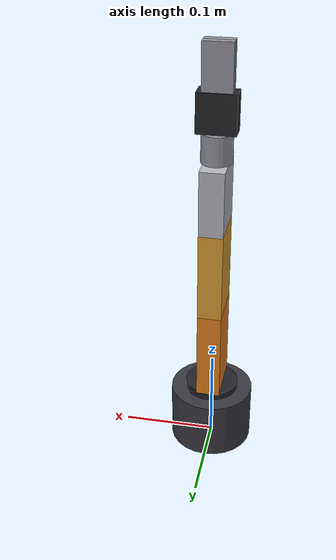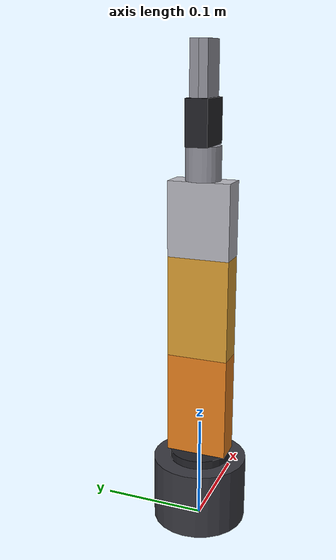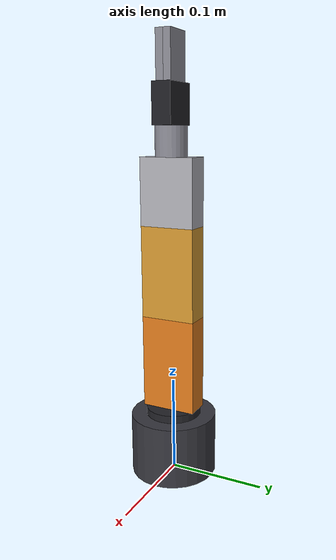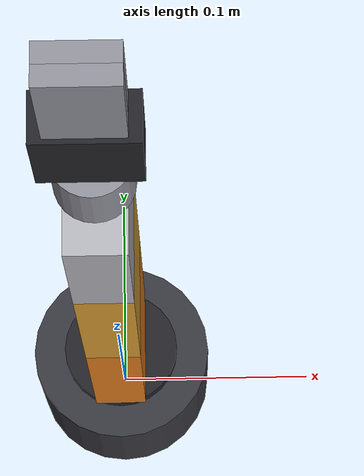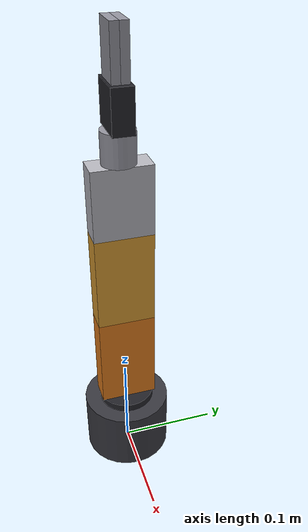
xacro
<?xml version="1.0"?>
<robot xmlns:xacro="http://www.ros.org/wiki/xacro" name="my_robot_arm">

  <!-- ================= 实测尺寸参数 ================= -->
  <xacro:property name="base_height" value="0.0645"/>  <!-- 底面 -> j1 轴线 -->
  <xacro:property name="j1_j2"       value="0.008"/>   <!-- j1 轴线 -> j2 轴线 -->
  <xacro:property name="link2_len"   value="0.0985"/>  <!-- j2 -> j3，大臂 -->
  <xacro:property name="link3_len"   value="0.0950"/>  <!-- j3 -> j4，小臂 -->
  <xacro:property name="link4_len"   value="0.0685"/>  <!-- j4 -> j5，腕部 -->
  <xacro:property name="j5_j6"       value="0.0300"/>  <!-- j5 -> j6，舵机连接节点 -->
  <xacro:property name="gripper_top" value="0.1170"/>  <!-- j5 -> 夹爪完全闭合时的最高点 -->

  <!-- ============ 关节截面尺寸（实测） ============ -->
  <!-- X = 侧视方向的进深（臂弯曲平面内）；Y = 沿各俯仰关节旋转轴的宽度 -->
  <xacro:property name="joint_depth" value="0.0252"/>  <!-- 侧视方向 25.2mm -->
  <xacro:property name="joint_width" value="0.0576"/>  <!-- Y 方向 57.6mm，关节平均宽度 -->

  <!-- ============ 占位尺寸（用户未提供，按小型桌面臂估算，可直接改这里） ============ -->
  <xacro:property name="base_radius"     value="0.045"/>   <!-- 底座半径 -->
  <xacro:property name="j1_block_radius" value="0.0288"/>  <!-- j1->j2 转接块半径 = 关节宽度/2 -->
  <xacro:property name="connector_r"     value="0.016"/>   <!-- j5->j6 连接段半径 -->
  <xacro:property name="servo_len"       value="0.040"/>   <!-- 夹爪舵机本体高度 -->
  <xacro:property name="servo_w"         value="0.040"/>   <!-- 舵机宽(x) -->
  <xacro:property name="servo_d"         value="0.020"/>   <!-- 舵机厚(y) -->
  <xacro:property name="finger_w"        value="0.030"/>   <!-- 手指宽(x) -->
  <xacro:property name="finger_t"        value="0.008"/>   <!-- 手指厚(y) -->
  <xacro:property name="finger_close_y"  value="0.004"/>   <!-- 闭合时手指中心 |y| -->
  <xacro:property name="finger_travel"   value="0.020"/>   <!-- 单指最大行程（开口共 40mm） -->

  <!-- 夹爪手指长度由「最高点」反推：j5->j6 + 舵机 + 手指 = 117mm -->
  <xacro:property name="finger_len" value="${gripper_top - j5_j6 - servo_len}"/>

  <!-- ================= 质量参数（占位，单位 kg） ================= -->
  <xacro:property name="m_base"    value="0.60"/>
  <xacro:property name="m_link1"   value="0.05"/>
  <xacro:property name="m_link2"   value="0.16"/>
  <xacro:property name="m_link3"   value="0.13"/>
  <xacro:property name="m_link4"   value="0.08"/>
  <xacro:property name="m_link5"   value="0.04"/>
  <xacro:property name="m_servo"   value="0.06"/>
  <xacro:property name="m_finger"  value="0.01"/>

  <!-- ================= 关节参数 ================= -->
  <xacro:property name="effort"   value="10.0"/>
  <xacro:property name="velocity" value="3.0"/>

  <!-- ================= 颜色 ================= -->
  <material name="graphite"> <color rgba="0.22 0.22 0.25 1.0"/></material>
  <material name="orange">   <color rgba="0.90 0.50 0.12 1.0"/></material>
  <material name="amber">    <color rgba="0.86 0.62 0.20 1.0"/></material>
  <material name="silver">   <color rgba="0.72 0.72 0.75 1.0"/></material>
  <material name="dark">     <color rgba="0.14 0.14 0.16 1.0"/></material>
  <material name="steel">    <color rgba="0.58 0.58 0.62 1.0"/></material>

  <!-- ================= 惯量宏 ================= -->
  <xacro:macro name="box_inertial" params="mass x y z zoff">
    <inertial>
      <origin xyz="0 0 ${zoff}" rpy="0 0 0"/>
      <mass value="${mass}"/>
      <inertia ixx="${mass*(y*y+z*z)/12.0}" ixy="0.0" ixz="0.0"
               iyy="${mass*(x*x+z*z)/12.0}" iyz="0.0"
               izz="${mass*(x*x+y*y)/12.0}"/>
    </inertial>
  </xacro:macro>

  <xacro:macro name="cylinder_inertial" params="mass r h zoff">
    <inertial>
      <origin xyz="0 0 ${zoff}" rpy="0 0 0"/>
      <mass value="${mass}"/>
      <inertia ixx="${mass*(3.0*r*r+h*h)/12.0}" ixy="0.0" ixz="0.0"
               iyy="${mass*(3.0*r*r+h*h)/12.0}" iyz="0.0"
               izz="${mass*r*r/2.0}"/>
    </inertial>
  </xacro:macro>

  <link name="base_footprint"/>
  <joint name="base_footprint_joint" type="fixed">
    <parent link="base_footprint"/>
    <child link="base_link"/>
    <origin xyz="0 0 0" rpy="0 0 0"/>
  </joint>

  <!-- ================================================================
       base_link —— 底座，原点在地面，向上 64.5mm 到 j1
       ================================================================ -->
  <link name="base_link">
    <visual>
      <origin xyz="0 0 ${base_height/2}" rpy="0 0 0"/>
      <geometry><cylinder radius="${base_radius}" length="${base_height}"/></geometry>
      <material name="graphite"/>
    </visual>
    <collision>
      <origin xyz="0 0 ${base_height/2}" rpy="0 0 0"/>
      <geometry><cylinder radius="${base_radius}" length="${base_height}"/></geometry>
    </collision>
    <xacro:cylinder_inertial mass="${m_base}" r="${base_radius}" h="${base_height}" zoff="${base_height/2}"/>
  </link>

  <!-- j1：底座回转（绕竖直 Z 轴） -->
  <joint name="joint1" type="revolute">
    <parent link="base_link"/>
    <child link="link1"/>
    <origin xyz="0 0 ${base_height}" rpy="0 0 0"/>
    <axis xyz="0 0 1"/>
    <!-- 底盘总行程 180°，左右对称：-90° ~ +90° -->
    <limit lower="-1.57079633" upper="1.57079633" effort="${effort}" velocity="${velocity}"/>
    <dynamics damping="0.05" friction="0.02"/>
  </joint>

  <!-- ================================================================
       link1 —— j1 到 j2 的转接块，8mm
       ================================================================ -->
  <link name="link1">
    <visual>
      <origin xyz="0 0 ${j1_j2/2}" rpy="0 0 0"/>
      <geometry><cylinder radius="${j1_block_radius}" length="${j1_j2}"/></geometry>
      <material name="dark"/>
    </visual>
    <collision>
      <origin xyz="0 0 ${j1_j2/2}" rpy="0 0 0"/>
      <geometry><cylinder radius="${j1_block_radius}" length="${j1_j2}"/></geometry>
    </collision>
    <xacro:cylinder_inertial mass="${m_link1}" r="${j1_block_radius}" h="${j1_j2}" zoff="${j1_j2/2}"/>
  </link>

  <!-- j2：肩部俯仰（绕水平 Y 轴） -->
  <joint name="joint2" type="revolute">
    <parent link="link1"/>
    <child link="link2"/>
    <origin xyz="0 0 ${j1_j2}" rpy="0 0 0"/>
    <axis xyz="0 1 0"/>
    <limit lower="-1.57079633" upper="1.57079633" effort="${effort}" velocity="${velocity}"/>
    <dynamics damping="0.05" friction="0.02"/>
  </joint>

  <!-- ================================================================
       link2 —— 大臂，98.5mm
       ================================================================ -->
  <link name="link2">
    <visual>
      <origin xyz="0 0 ${link2_len/2}" rpy="0 0 0"/>
      <geometry><box size="${joint_depth} ${joint_width} ${link2_len}"/></geometry>
      <material name="orange"/>
    </visual>
    <collision>
      <origin xyz="0 0 ${link2_len/2}" rpy="0 0 0"/>
      <geometry><box size="${joint_depth} ${joint_width} ${link2_len}"/></geometry>
    </collision>
    <xacro:box_inertial mass="${m_link2}" x="${joint_depth}" y="${joint_width}" z="${link2_len}" zoff="${link2_len/2}"/>
  </link>

  <!-- j3：肘部俯仰 -->
  <joint name="joint3" type="revolute">
    <parent link="link2"/>
    <child link="link3"/>
    <origin xyz="0 0 ${link2_len}" rpy="0 0 0"/>
    <axis xyz="0 1 0"/>
    <!-- 与 j2 行程相同：-90° ~ +90° -->
    <limit lower="-1.57079633" upper="1.57079633" effort="${effort}" velocity="${velocity}"/>
    <dynamics damping="0.05" friction="0.02"/>
  </joint>

  <!-- ================================================================
       link3 —— 小臂，95mm
       ================================================================ -->
  <link name="link3">
    <visual>
      <origin xyz="0 0 ${link3_len/2}" rpy="0 0 0"/>
      <geometry><box size="${joint_depth} ${joint_width} ${link3_len}"/></geometry>
      <material name="amber"/>
    </visual>
    <collision>
      <origin xyz="0 0 ${link3_len/2}" rpy="0 0 0"/>
      <geometry><box size="${joint_depth} ${joint_width} ${link3_len}"/></geometry>
    </collision>
    <xacro:box_inertial mass="${m_link3}" x="${joint_depth}" y="${joint_width}" z="${link3_len}" zoff="${link3_len/2}"/>
  </link>

  <!-- j4：腕部俯仰 -->
  <joint name="joint4" type="revolute">
    <parent link="link3"/>
    <child link="link4"/>
    <origin xyz="0 0 ${link3_len}" rpy="0 0 0"/>
    <axis xyz="0 1 0"/>
    <limit lower="-1.57079633" upper="1.57079633" effort="${effort}" velocity="${velocity}"/>
    <dynamics damping="0.05" friction="0.02"/>
  </joint>

  <!-- ================================================================
       link4 —— 腕部，68.5mm，末端为 j5
       ================================================================ -->
  <link name="link4">
    <visual>
      <origin xyz="0 0 ${link4_len/2}" rpy="0 0 0"/>
      <geometry><box size="${joint_depth} ${joint_width} ${link4_len}"/></geometry>
      <material name="silver"/>
    </visual>
    <collision>
      <origin xyz="0 0 ${link4_len/2}" rpy="0 0 0"/>
      <geometry><box size="${joint_depth} ${joint_width} ${link4_len}"/></geometry>
    </collision>
    <xacro:box_inertial mass="${m_link4}" x="${joint_depth}" y="${joint_width}" z="${link4_len}" zoff="${link4_len/2}"/>
  </link>

  <!-- j5：腕部自转（沿臂轴 Z） -->
  <joint name="joint5" type="revolute">
    <parent link="link4"/>
    <child link="link5"/>
    <origin xyz="0 0 ${link4_len}" rpy="0 0 0"/>
    <axis xyz="0 0 1"/>
    <limit lower="-3.14159265" upper="3.14159265" effort="${effort}" velocity="${velocity}"/>
    <dynamics damping="0.05" friction="0.02"/>
  </joint>

  <!-- ================================================================
       link5 —— j5 到 j6 的舵机连接段，30mm
       ================================================================ -->
  <link name="link5">
    <visual>
      <origin xyz="0 0 ${j5_j6/2}" rpy="0 0 0"/>
      <geometry><cylinder radius="${connector_r}" length="${j5_j6}"/></geometry>
      <material name="steel"/>
    </visual>
    <collision>
      <origin xyz="0 0 ${j5_j6/2}" rpy="0 0 0"/>
      <geometry><cylinder radius="${connector_r}" length="${j5_j6}"/></geometry>
    </collision>
    <xacro:cylinder_inertial mass="${m_link5}" r="${connector_r}" h="${j5_j6}" zoff="${j5_j6/2}"/>
  </link>

  <!-- j6：夹爪舵机安装节点（结构固定节点，不产生自由度） -->
  <joint name="joint6" type="fixed">
    <parent link="link5"/>
    <child link="gripper_base"/>
    <origin xyz="0 0 ${j5_j6}" rpy="0 0 0"/>
  </joint>

  <!-- ================================================================
       gripper_base —— 夹爪舵机本体，40mm
       ================================================================ -->
  <link name="gripper_base">
    <visual>
      <origin xyz="0 0 ${servo_len/2}" rpy="0 0 0"/>
      <geometry><box size="${servo_w} ${servo_d} ${servo_len}"/></geometry>
      <material name="dark"/>
    </visual>
    <collision>
      <origin xyz="0 0 ${servo_len/2}" rpy="0 0 0"/>
      <geometry><box size="${servo_w} ${servo_d} ${servo_len}"/></geometry>
    </collision>
    <xacro:box_inertial mass="${m_servo}" x="${servo_w}" y="${servo_d}" z="${servo_len}" zoff="${servo_len/2}"/>
  </link>

  <!-- 左指：沿 +Y 张开，行程 0 ~ 20mm -->
  <joint name="gripper_finger_left_joint" type="prismatic">
    <parent link="gripper_base"/>
    <child link="gripper_finger_left"/>
    <origin xyz="0 ${finger_close_y} ${servo_len}" rpy="0 0 0"/>
    <axis xyz="0 1 0"/>
    <limit lower="0.0" upper="${finger_travel}" effort="20.0" velocity="0.05"/>
    <dynamics damping="0.02" friction="0.01"/>
  </joint>

  <link name="gripper_finger_left">
    <visual>
      <origin xyz="0 0 ${finger_len/2}" rpy="0 0 0"/>
      <geometry><box size="${finger_w} ${finger_t} ${finger_len}"/></geometry>
      <material name="steel"/>
    </visual>
    <collision>
      <origin xyz="0 0 ${finger_len/2}" rpy="0 0 0"/>
      <geometry><box size="${finger_w} ${finger_t} ${finger_len}"/></geometry>
    </collision>
    <xacro:box_inertial mass="${m_finger}" x="${finger_w}" y="${finger_t}" z="${finger_len}" zoff="${finger_len/2}"/>
  </link>

  <!-- 右指：轴向取 -Y，mimic 左指，实现对称开合 -->
  <joint name="gripper_finger_right_joint" type="prismatic">
    <parent link="gripper_base"/>
    <child link="gripper_finger_right"/>
    <origin xyz="0 ${-finger_close_y} ${servo_len}" rpy="0 0 0"/>
    <axis xyz="0 -1 0"/>
    <limit lower="0.0" upper="${finger_travel}" effort="20.0" velocity="0.05"/>
    <dynamics damping="0.02" friction="0.01"/>
    <mimic joint="gripper_finger_left_joint" multiplier="1.0" offset="0.0"/>
  </joint>

  <link name="gripper_finger_right">
    <visual>
      <origin xyz="0 0 ${finger_len/2}" rpy="0 0 0"/>
      <geometry><box size="${finger_w} ${finger_t} ${finger_len}"/></geometry>
      <material name="steel"/>
    </visual>
    <collision>
      <origin xyz="0 0 ${finger_len/2}" rpy="0 0 0"/>
      <geometry><box size="${finger_w} ${finger_t} ${finger_len}"/></geometry>
    </collision>
    <xacro:box_inertial mass="${m_finger}" x="${finger_w}" y="${finger_t}" z="${finger_len}" zoff="${finger_len/2}"/>
  </link>
  <xacro:include filename="$(find my_robot_arm_description)/urdf/robot_arm.ros2_control.xacro"/>
</robot>
